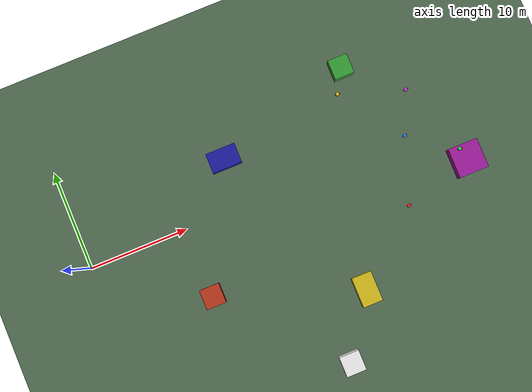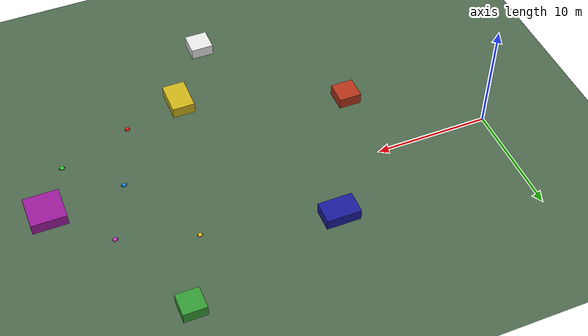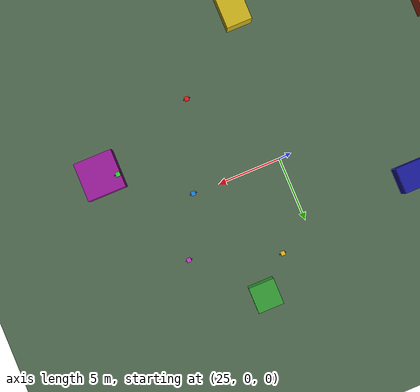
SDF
<?xml version="1.0" ?>
  <sdf version="1.9">
    <world name="riposte_swarm">
      <physics name="1ms" type="ignored">
        <max_step_size>0.004</max_step_size>
        <real_time_factor>1.0</real_time_factor>
      </physics>

      <plugin filename="gz-sim-physics-system" name="gz::sim::systems::Physics"/>
      <plugin filename="gz-sim-user-commands-system"
              name="gz::sim::systems::UserCommands"/>
      <plugin filename="gz-sim-scene-broadcaster-system"
              name="gz::sim::systems::SceneBroadcaster"/>
      <plugin filename="gz-sim-sensors-system" name="gz::sim::systems::Sensors">
        <render_engine>ogre2</render_engine>
      </plugin>
      <!-- x500 sensor feeds. A world listing its own plugins does not inherit the
           server defaults, so each system the vehicle needs must appear here. -->
      <plugin filename="gz-sim-imu-system" name="gz::sim::systems::Imu"/>
      <plugin filename="gz-sim-magnetometer-system" name="gz::sim::systems::Magnetometer"/>
      <plugin filename="gz-sim-air-pressure-system"
              name="gz::sim::systems::AirPressure"/>
      <plugin filename="gz-sim-navsat-system" name="gz::sim::systems::NavSat"/>

      <!-- PX4 GPS origin (matches PX4 default SITL home). -->
      <spherical_coordinates>
        <surface_model>EARTH_WGS84</surface_model>
        <world_frame_orientation>ENU</world_frame_orientation>
        <latitude_deg>47.397971057728974</latitude_deg>
        <longitude_deg>8.546163739800146</longitude_deg>
        <elevation>0</elevation>
      </spherical_coordinates>

      <light type="directional" name="sun">
        <cast_shadows>true</cast_shadows>
        <pose>0 0 10 0 0 0</pose>
        <diffuse>0.8 0.8 0.8 1</diffuse>
        <specular>0.2 0.2 0.2 1</specular>
        <direction>-0.5 0.1 -0.9</direction>
      </light>
      <model name="ground_plane">
        <static>true</static>
        <link name="link">
          <collision name="collision">
            <geometry><plane><normal>0 0 1</normal><size>200 200</size></plane></geometry>
          </collision>
          <visual name="visual">
            <geometry><plane><normal>0 0 1</normal><size>200 200</size></plane></geometry>
            <material>
              <ambient>0.3 0.35 0.3 1</ambient>
              <diffuse>0.3 0.4 0.3 1</diffuse>
            </material>
          </visual>
        </link>
      </model>
      <model name="ground_features">
          <static>true</static>
          <link name="link">
            <visual name="a"><pose>10 -7 0.5 0 0 0</pose><geometry><box><size>2 2 1</size></box></geometry><material><ambient>0.7 0.2
  0.1 1</ambient><diffuse>0.7 0.2 0.1 1</diffuse></material></visual>
            <visual name="b"><pose>16 5 0.5 0 0 0</pose><geometry><box><size>3 2 1</size></box></geometry><material><ambient>0.1 0.1 0.6
  1</ambient><diffuse>0.1 0.1 0.6 1</diffuse></material></visual>
            <visual name="c"><pose>24 -12 0.5 0 0 0</pose><geometry><box><size>2 3 1</size></box></geometry><material><ambient>0.8 0.7
  0.1 1</ambient><diffuse>0.8 0.7 0.1 1</diffuse></material></visual>
            <visual name="d"><pose>30 9 0.5 0 0 0</pose><geometry><box><size>2 2 1</size></box></geometry><material><ambient>0.2 0.6 0.2
  1</ambient><diffuse>0.2 0.6 0.2 1</diffuse></material></visual>
            <visual name="e"><pose>38 -4 0.5 0 0 0</pose><geometry><box><size>3 3 1</size></box></geometry><material><ambient>0.6 0.1
  0.6 1</ambient><diffuse>0.6 0.1 0.6 1</diffuse></material></visual>
            <visual name="f"><pose>20 -18 0.5 0 0 0</pose><geometry><box><size>2 2 1</size></box></geometry><material><ambient>0.9 0.9
  0.9 1</ambient><diffuse>0.9 0.9 0.9 1</diffuse></material></visual>
          </link>
        </model>

      <!-- drone_1: start (30.0 -6.0 5.0) ENU, velocity (-0.4 0.15 0.0) m/s, speed 0.43 m/s -->
      <model name="drone_1">
        <pose>30.0 -6.0 5.0 0 0 0</pose>
        <link name="body">
        <gravity>false</gravity>
          <inertial>
            <mass>0.5</mass>
            <inertia><ixx>0.01</ixx><iyy>0.01</iyy><izz>0.02</izz>
                     <ixy>0</ixy><ixz>0</ixz><iyz>0</iyz></inertia>
          </inertial>
          <visual name="core">
            <geometry><box><size>0.30 0.30 0.10</size></box></geometry>
            <material>
              <ambient>0.9 0.1 0.1 1</ambient>
              <diffuse>0.9 0.1 0.1 1</diffuse>
            </material>
          </visual>
          <visual name="arm">
            <geometry><box><size>0.5 0.05 0.03</size></box></geometry>
            <material><diffuse>0.2 0.2 0.2 1</diffuse></material>
          </visual>
        </link>
        <plugin filename="gz-sim-velocity-control-system"
                name="gz::sim::systems::VelocityControl">
          <initial_linear>-0.4 0.15 0.0</initial_linear>
          <initial_angular>0 0 0</initial_angular>
        </plugin>
        </model>

      <!-- drone_2: start (32.0 0.0 5.5) ENU, velocity (-0.45 0.0 0.0) m/s, speed 0.45 m/s -->
      <model name="drone_2">
        <pose>32.0 0.0 5.5 0 0 0</pose>
        <link name="body">
        <gravity>false</gravity>
          <inertial>
            <mass>0.5</mass>
            <inertia><ixx>0.01</ixx><iyy>0.01</iyy><izz>0.02</izz>
                     <ixy>0</ixy><ixz>0</ixz><iyz>0</iyz></inertia>
          </inertial>
          <visual name="core">
            <geometry><box><size>0.30 0.30 0.10</size></box></geometry>
            <material>
              <ambient>0.1 0.5 0.9 1</ambient>
              <diffuse>0.1 0.5 0.9 1</diffuse>
            </material>
          </visual>
          <visual name="arm">
            <geometry><box><size>0.5 0.05 0.03</size></box></geometry>
            <material><diffuse>0.2 0.2 0.2 1</diffuse></material>
          </visual>
        </link>
        <plugin filename="gz-sim-velocity-control-system"
                name="gz::sim::systems::VelocityControl">
          <initial_linear>-0.45 0.0 0.0</initial_linear>
          <initial_angular>0 0 0</initial_angular>
        </plugin>
        </model>

      <!-- drone_3: start (28.0 6.0 4.5) ENU, velocity (-0.4 -0.15 0.0) m/s, speed 0.43 m/s -->
      <model name="drone_3">
        <pose>28.0 6.0 4.5 0 0 0</pose>
        <link name="body">
        <gravity>false</gravity>
          <inertial>
            <mass>0.5</mass>
            <inertia><ixx>0.01</ixx><iyy>0.01</iyy><izz>0.02</izz>
                     <ixy>0</ixy><ixz>0</ixz><iyz>0</iyz></inertia>
          </inertial>
          <visual name="core">
            <geometry><box><size>0.30 0.30 0.10</size></box></geometry>
            <material>
              <ambient>0.9 0.7 0.1 1</ambient>
              <diffuse>0.9 0.7 0.1 1</diffuse>
            </material>
          </visual>
          <visual name="arm">
            <geometry><box><size>0.5 0.05 0.03</size></box></geometry>
            <material><diffuse>0.2 0.2 0.2 1</diffuse></material>
          </visual>
        </link>
        <plugin filename="gz-sim-velocity-control-system"
                name="gz::sim::systems::VelocityControl">
          <initial_linear>-0.4 -0.15 0.0</initial_linear>
          <initial_angular>0 0 0</initial_angular>
        </plugin>
        </model>

      <!-- drone_4: start (36.0 -3.0 6.0) ENU, velocity (-0.5 0.1 0.0) m/s, speed 0.51 m/s -->
      <model name="drone_4">
        <pose>36.0 -3.0 6.0 0 0 0</pose>
        <link name="body">
        <gravity>false</gravity>
          <inertial>
            <mass>0.5</mass>
            <inertia><ixx>0.01</ixx><iyy>0.01</iyy><izz>0.02</izz>
                     <ixy>0</ixy><ixz>0</ixz><iyz>0</iyz></inertia>
          </inertial>
          <visual name="core">
            <geometry><box><size>0.30 0.30 0.10</size></box></geometry>
            <material>
              <ambient>0.2 0.8 0.2 1</ambient>
              <diffuse>0.2 0.8 0.2 1</diffuse>
            </material>
          </visual>
          <visual name="arm">
            <geometry><box><size>0.5 0.05 0.03</size></box></geometry>
            <material><diffuse>0.2 0.2 0.2 1</diffuse></material>
          </visual>
        </link>
        <plugin filename="gz-sim-velocity-control-system"
                name="gz::sim::systems::VelocityControl">
          <initial_linear>-0.5 0.1 0.0</initial_linear>
          <initial_angular>0 0 0</initial_angular>
        </plugin>
        </model>

      <!-- drone_5: start (34.0 4.0 4.5) ENU, velocity (-0.45 -0.1 0.0) m/s, speed 0.46 m/s -->
      <model name="drone_5">
        <pose>34.0 4.0 4.5 0 0 0</pose>
        <link name="body">
        <gravity>false</gravity>
          <inertial>
            <mass>0.5</mass>
            <inertia><ixx>0.01</ixx><iyy>0.01</iyy><izz>0.02</izz>
                     <ixy>0</ixy><ixz>0</ixz><iyz>0</iyz></inertia>
          </inertial>
          <visual name="core">
            <geometry><box><size>0.30 0.30 0.10</size></box></geometry>
            <material>
              <ambient>0.8 0.2 0.8 1</ambient>
              <diffuse>0.8 0.2 0.8 1</diffuse>
            </material>
          </visual>
          <visual name="arm">
            <geometry><box><size>0.5 0.05 0.03</size></box></geometry>
            <material><diffuse>0.2 0.2 0.2 1</diffuse></material>
          </visual>
        </link>
        <plugin filename="gz-sim-velocity-control-system"
                name="gz::sim::systems::VelocityControl">
          <initial_linear>-0.45 -0.1 0.0</initial_linear>
          <initial_angular>0 0 0</initial_angular>
        </plugin>
        </model>
    </world>
</sdf>
